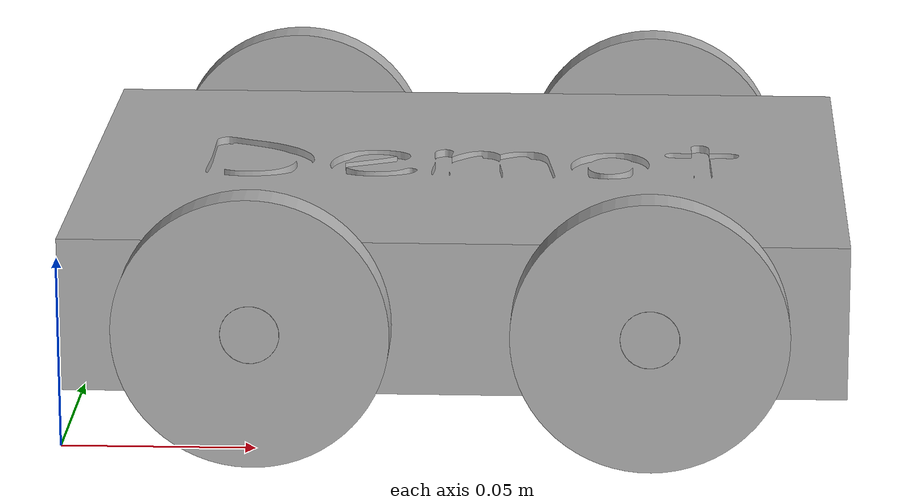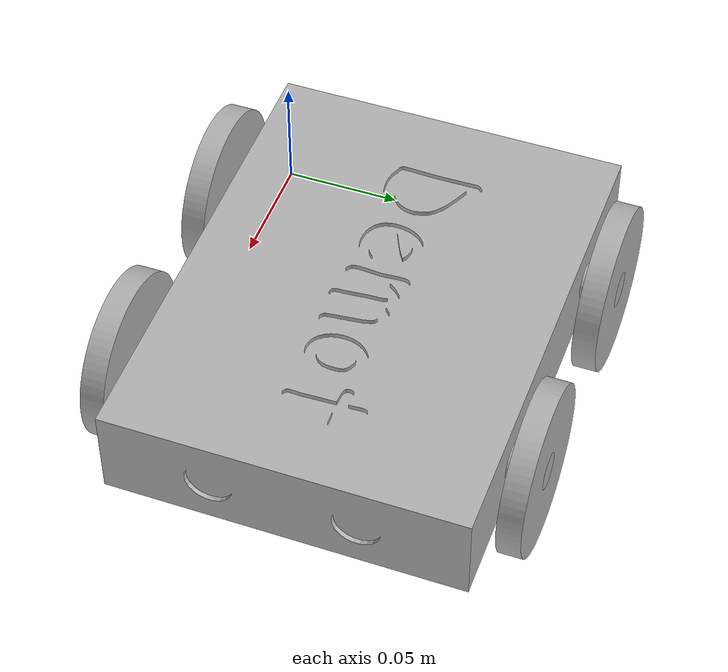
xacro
<?xml version="1.0" ?>
<robot name="mpbot" xmlns:xacro="http://www.ros.org/wiki/xacro">

<xacro:include filename="$(find mpbot_description)/urdf/materials.xacro" />
<xacro:include filename="$(find mpbot_description)/urdf/mpbot.trans" />
<xacro:include filename="$(find mpbot_description)/gazebo/mpbot_materials.gazebo" />
<xacro:include filename="$(find mpbot_description)/gazebo/mpbot_physics.gazebo" />
<xacro:include filename="$(find mpbot_description)/gazebo/mpbot_plugins.gazebo" />

<link name="base_link">
  <inertial>
    <origin rpy="0 0 0" xyz="0.0999061760229392 0.07499417345841541 0.03494600887912029"/>
    <mass value="1.2782741906473842"/>
    <inertia ixx="0.002629" ixy="-0.0" ixz="-0.0" iyy="0.004417" iyz="0.0" izz="0.006709"/>
  </inertial>
  <visual>
    <origin rpy="0 0 0" xyz="0 0 0"/>
    <geometry>
      <mesh filename="package://mpbot_description/meshes/base_link.stl" scale="0.001 0.001 0.001"/>
    </geometry>
    <material name="silver"/>
  </visual>
  <collision>
    <origin rpy="0 0 0" xyz="0 0 0"/>
    <geometry>
      <mesh filename="package://mpbot_description/meshes/base_link.stl" scale="0.001 0.001 0.001"/>
    </geometry>
  </collision>
</link>

<link name="Wheel_1_1">
  <inertial>
    <origin rpy="0 0 0" xyz="-3.774758283725532e-14 0.005000000000000025 0.0"/>
    <mass value="0.052322243897833645"/>
    <inertia ixx="1.7e-05" ixy="0.0" ixz="-0.0" iyy="3.4e-05" iyz="-0.0" izz="1.7e-05"/>
  </inertial>
  <visual>
    <origin rpy="0 0 0" xyz="-0.15 0.015 -0.035"/>
    <geometry>
      <mesh filename="package://mpbot_description/meshes/Wheel_1_1.stl" scale="0.001 0.001 0.001"/>
    </geometry>
    <material name="silver"/>
  </visual>
  <collision>
    <origin rpy="0 0 0" xyz="-0.15 0.015 -0.035"/>
    <geometry>
      <mesh filename="package://mpbot_description/meshes/Wheel_1_1.stl" scale="0.001 0.001 0.001"/>
    </geometry>
  </collision>
</link>

<link name="Wheel_3_1">
  <inertial>
    <origin rpy="0 0 0" xyz="3.785166624581393e-14 0.005000000000000041 -1.3877787807814457e-17"/>
    <mass value="0.052322243897833645"/>
    <inertia ixx="1.7e-05" ixy="0.0" ixz="-0.0" iyy="3.4e-05" iyz="0.0" izz="1.7e-05"/>
  </inertial>
  <visual>
    <origin rpy="0 0 0" xyz="-0.05 0.015 -0.035"/>
    <geometry>
      <mesh filename="package://mpbot_description/meshes/Wheel_3_1.stl" scale="0.001 0.001 0.001"/>
    </geometry>
    <material name="silver"/>
  </visual>
  <collision>
    <origin rpy="0 0 0" xyz="-0.05 0.015 -0.035"/>
    <geometry>
      <mesh filename="package://mpbot_description/meshes/Wheel_3_1.stl" scale="0.001 0.001 0.001"/>
    </geometry>
  </collision>
</link>

<link name="Wheel_2_1">
  <inertial>
    <origin rpy="0 0 0" xyz="-3.7719827261639693e-14 -0.0050000000000000044 0.0"/>
    <mass value="0.052322243897833645"/>
    <inertia ixx="1.7e-05" ixy="-0.0" ixz="0.0" iyy="3.4e-05" iyz="0.0" izz="1.7e-05"/>
  </inertial>
  <visual>
    <origin rpy="0 0 0" xyz="-0.15 -0.165 -0.035"/>
    <geometry>
      <mesh filename="package://mpbot_description/meshes/Wheel_2_1.stl" scale="0.001 0.001 0.001"/>
    </geometry>
    <material name="silver"/>
  </visual>
  <collision>
    <origin rpy="0 0 0" xyz="-0.15 -0.165 -0.035"/>
    <geometry>
      <mesh filename="package://mpbot_description/meshes/Wheel_2_1.stl" scale="0.001 0.001 0.001"/>
    </geometry>
  </collision>
</link>

<link name="Wheel_4_1">
  <inertial>
    <origin rpy="0 0 0" xyz="3.770594947383188e-14 -0.0050000000000000044 0.0"/>
    <mass value="0.052322243897833645"/>
    <inertia ixx="1.7e-05" ixy="0.0" ixz="-0.0" iyy="3.4e-05" iyz="0.0" izz="1.7e-05"/>
  </inertial>
  <visual>
    <origin rpy="0 0 0" xyz="-0.05 -0.165 -0.035"/>
    <geometry>
      <mesh filename="package://mpbot_description/meshes/Wheel_4_1.stl" scale="0.001 0.001 0.001"/>
    </geometry>
    <material name="silver"/>
  </visual>
  <collision>
    <origin rpy="0 0 0" xyz="-0.05 -0.165 -0.035"/>
    <geometry>
      <mesh filename="package://mpbot_description/meshes/Wheel_4_1.stl" scale="0.001 0.001 0.001"/>
    </geometry>
  </collision>
</link>

<joint name="Rev1" type="continuous">
  <origin rpy="0 0 0" xyz="0.15 -0.015 0.035"/>
  <parent link="base_link"/>
  <child link="Wheel_1_1"/>
  <axis xyz="-0.0 1.0 0.0"/>
</joint>

<joint name="Rev2" type="continuous">
  <origin rpy="0 0 0" xyz="0.05 -0.015 0.035"/>
  <parent link="base_link"/>
  <child link="Wheel_3_1"/>
  <axis xyz="-0.0 1.0 0.0"/>
</joint>

<joint name="Rev3" type="continuous">
  <origin rpy="0 0 0" xyz="0.15 0.165 0.035"/>
  <parent link="base_link"/>
  <child link="Wheel_2_1"/>
  <axis xyz="0.0 1.0 -0.0"/>
</joint>

<joint name="Rev4" type="continuous">
  <origin rpy="0 0 0" xyz="0.05 0.165 0.035"/>
  <parent link="base_link"/>
  <child link="Wheel_4_1"/>
  <axis xyz="0.0 1.0 -0.0"/>
</joint>

</robot>

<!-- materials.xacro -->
<robot name="mpbot" xmlns:xacro="http://www.ros.org/wiki/xacro" >

<material name="silver">
  <color rgba="0.700 0.700 0.700 1.000"/>
</material>

</robot>

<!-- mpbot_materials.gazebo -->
<robot name="mpbot" xmlns:xacro="http://www.ros.org/wiki/xacro" >

<xacro:property name="black_color" value="Gazebo/White" />
<xacro:property name="green_color" value="Gazebo/Blue" />

<gazebo reference="base_link">
  <material>${green_color}</material>
</gazebo>

<gazebo reference="Wheel_1_1">
  <material>${black_color}</material>
</gazebo>

<gazebo reference="Wheel_3_1">
  <material>${black_color}</material>
</gazebo>

<gazebo reference="Wheel_2_1">
  <material>${black_color}</material>
</gazebo>

<gazebo reference="Wheel_4_1">
  <material>${black_color}</material>
</gazebo>

</robot>
